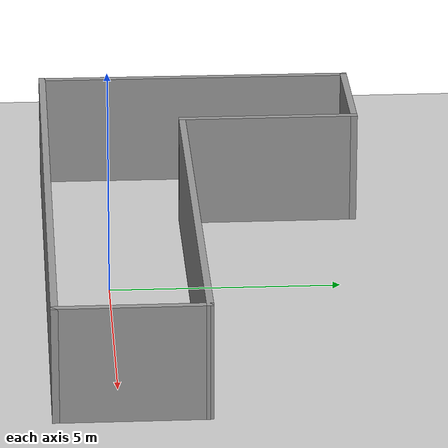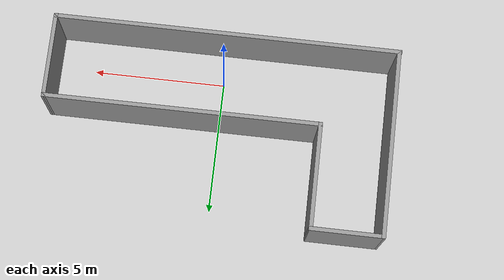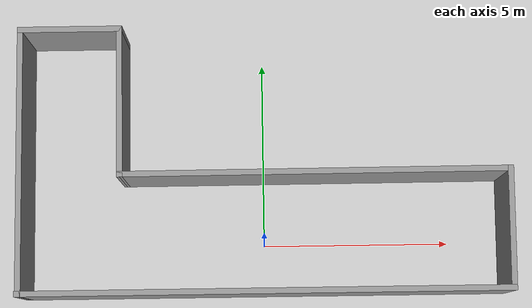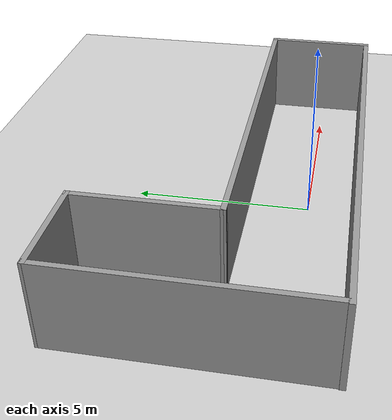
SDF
<?xml version="1.0"?>
<sdf version="1.7">
  <world name="default">
    <include>
      <uri>model://ground_plane</uri>
    </include>
    <include>
      <uri>model://sun</uri>
    </include>

<!-- Model -->
    <model name='l_wall'>
      <pose>0.018409 2.16324 0 0 -0 0</pose>
      <link name='Wall_1'>
        <collision name='Wall_1_Collision'>
          <geometry>
            <box>
              <size>7.0749 0.15 2.5</size>
            </box>
          </geometry>
          <pose>0 0 1.25 0 -0 0</pose>
        </collision>
        <visual name='Wall_1_Visual'>
          <pose>0 0 1.25 0 -0 0</pose>
          <geometry>
            <box>
              <size>7.0749 0.15 2.5</size>
            </box>
          </geometry>
          <material>
            <script>
              <uri>file://media/materials/scripts/gazebo.material</uri>
              <name>Gazebo/Grey</name>
            </script>
            <ambient>1 1 1 1</ambient>
          </material>
          <meta>
            <layer>0</layer>
          </meta>
        </visual>
        <pose>-6.38105 0 0 0 -0 -1.57684</pose>
      </link>
      <link name='Wall_10'>
        <collision name='Wall_10_Collision'>
          <geometry>
            <box>
              <size>3.25 0.15 2.5</size>
            </box>
          </geometry>
          <pose>0 0 1.25 0 -0 0</pose>
        </collision>
        <visual name='Wall_10_Visual'>
          <pose>0 0 1.25 0 -0 0</pose>
          <geometry>
            <box>
              <size>3.25 0.15 2.5</size>
            </box>
          </geometry>
          <material>
            <script>
              <uri>file://media/materials/scripts/gazebo.material</uri>
              <name>Gazebo/Grey</name>
            </script>
            <ambient>1 1 1 1</ambient>
          </material>
          <meta>
            <layer>0</layer>
          </meta>
        </visual>
        <pose>6.42491 -1.91239 0 0 -0 -1.5708</pose>
      </link>
      <link name='Wall_3'>
        <collision name='Wall_3_Collision'>
          <geometry>
            <box>
              <size>2.75 0.15 2.5</size>
            </box>
          </geometry>
          <pose>0 0 1.25 0 -0 0</pose>
        </collision>
        <visual name='Wall_3_Visual'>
          <pose>0 0 1.25 0 -0 0</pose>
          <geometry>
            <box>
              <size>2.75 0.15 2.5</size>
            </box>
          </geometry>
          <material>
            <script>
              <uri>file://media/materials/scripts/gazebo.material</uri>
              <name>Gazebo/Grey</name>
            </script>
            <ambient>1 1 1 1</ambient>
          </material>
          <meta>
            <layer>0</layer>
          </meta>
        </visual>
        <pose>-5.06014 3.46239 0 0 -0 0</pose>
      </link>
      <link name='Wall_5'>
        <collision name='Wall_5_Collision'>
          <geometry>
            <box>
              <size>13 0.15 2.5</size>
            </box>
          </geometry>
          <pose>0 0 1.25 0 -0 0</pose>
        </collision>
        <visual name='Wall_5_Visual'>
          <pose>0 0 1.25 0 -0 0</pose>
          <geometry>
            <box>
              <size>13 0.15 2.5</size>
            </box>
          </geometry>
          <material>
            <script>
              <uri>file://media/materials/scripts/gazebo.material</uri>
              <name>Gazebo/Grey</name>
            </script>
            <ambient>1 1 1 1</ambient>
          </material>
          <meta>
            <layer>0</layer>
          </meta>
        </visual>
        <pose>-9.3e-05 -3.46239 0 0 -0 0</pose>
      </link>
      <link name='Wall_7'>
        <collision name='Wall_7_Collision'>
          <geometry>
            <box>
              <size>4 0.15 2.5</size>
            </box>
          </geometry>
          <pose>0 0 1.25 0 -0 0</pose>
        </collision>
        <visual name='Wall_7_Visual'>
          <pose>0 0 1.25 0 -0 0</pose>
          <geometry>
            <box>
              <size>4 0.15 2.5</size>
            </box>
          </geometry>
          <material>
            <script>
              <uri>file://media/materials/scripts/gazebo.material</uri>
              <name>Gazebo/Grey</name>
            </script>
            <ambient>1 1 1 1</ambient>
          </material>
          <meta>
            <layer>0</layer>
          </meta>
        </visual>
        <pose>-3.76014 1.53739 0 0 -0 1.5708</pose>
      </link>
      <link name='Wall_9'>
        <collision name='Wall_9_Collision'>
          <geometry>
            <box>
              <size>10.3351 0.15 2.5</size>
            </box>
          </geometry>
          <pose>0 0 1.25 0 -0 0</pose>
        </collision>
        <visual name='Wall_9_Visual'>
          <pose>0 0 1.25 0 -0 0</pose>
          <geometry>
            <box>
              <size>10.3351 0.15 2.5</size>
            </box>
          </geometry>
          <material>
            <script>
              <uri>file://media/materials/scripts/gazebo.material</uri>
              <name>Gazebo/Grey</name>
            </script>
            <ambient>1 1 1 1</ambient>
          </material>
          <meta>
            <layer>0</layer>
          </meta>
        </visual>
        <pose>1.33238 -0.375 0 0 -0 0.002477</pose>
      </link>
      <static>1</static>
    </model>
  </world>
</sdf>
